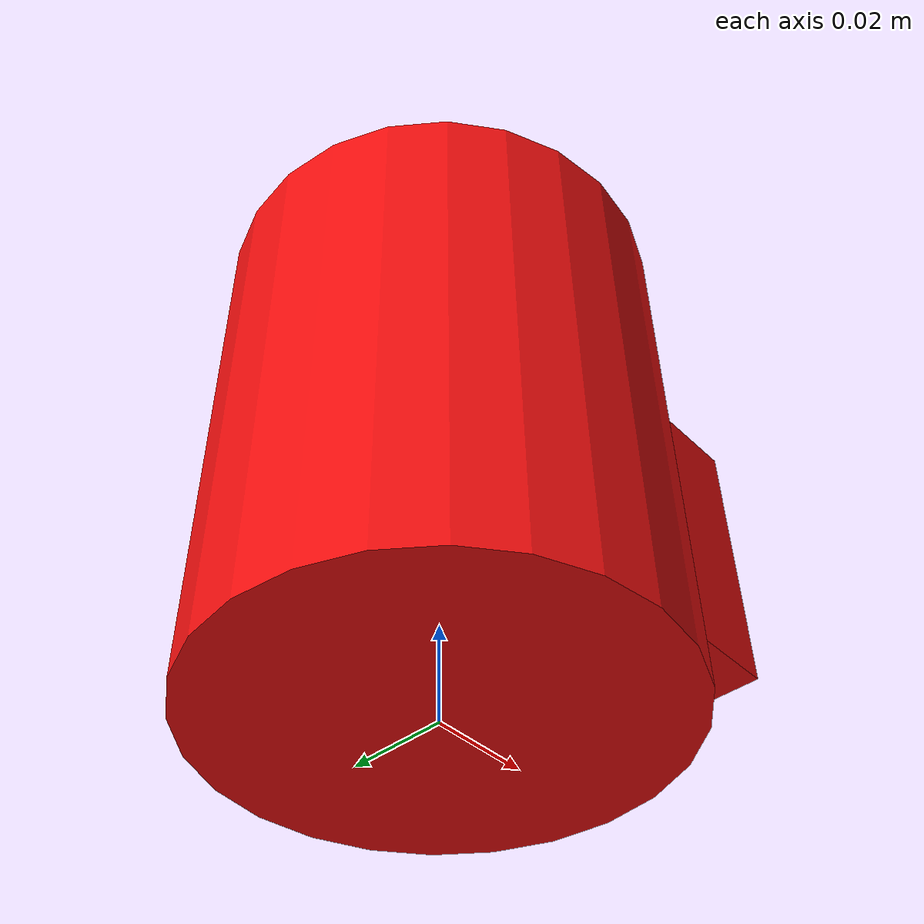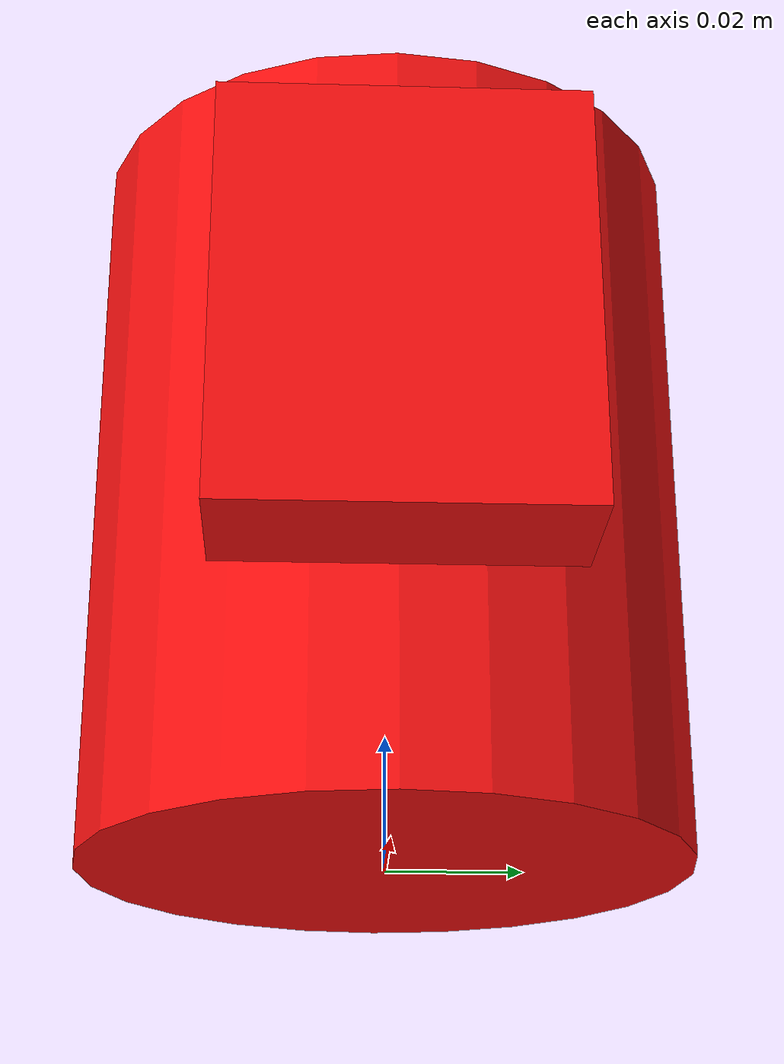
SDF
<?xml version="1.0"?>
<sdf version="1.7">
  <model name="target_cup">
    <static>true</static>
    <link name="link">

      <!-- Cup body: r 0.045, h 0.11, centred at z 0.055 so it rests on the floor. -->
      <visual name="body_visual">
        <pose>0 0 0.055 0 0 0</pose>
        <geometry><cylinder><radius>0.045</radius><length>0.11</length></cylinder></geometry>
        <material>
          <ambient>0.80 0.05 0.05 1</ambient>
          <diffuse>0.95 0.06 0.06 1</diffuse>
          <specular>0.20 0.20 0.20 1</specular>
        </material>
      </visual>
      <collision name="body_collision">
        <pose>0 0 0.055 0 0 0</pose>
        <geometry><cylinder><radius>0.045</radius><length>0.11</length></cylinder></geometry>
      </collision>

      <!-- Handle: the silhouette cue that pushes the detector to "cup". -->
      <visual name="handle_visual">
        <pose>0.055 0 0.06 0 0 0</pose>
        <geometry><box><size>0.02 0.05 0.06</size></box></geometry>
        <material>
          <ambient>0.80 0.05 0.05 1</ambient>
          <diffuse>0.95 0.06 0.06 1</diffuse>
          <specular>0.20 0.20 0.20 1</specular>
        </material>
      </visual>
      <collision name="handle_collision">
        <pose>0.055 0 0.06 0 0 0</pose>
        <geometry><box><size>0.02 0.05 0.06</size></box></geometry>
      </collision>

    </link>
  </model>
</sdf>
